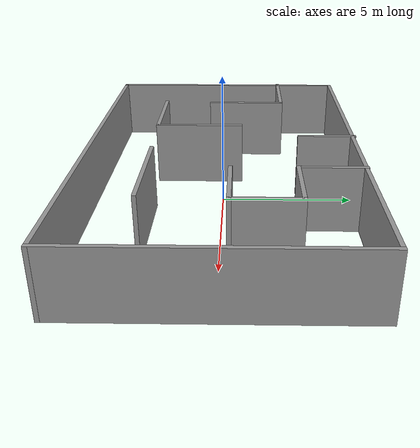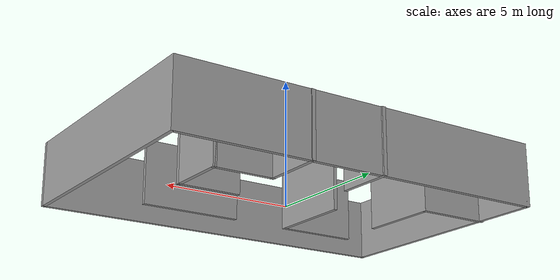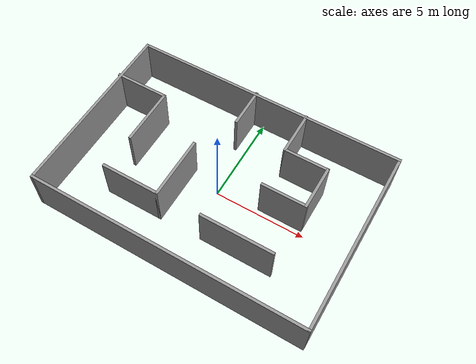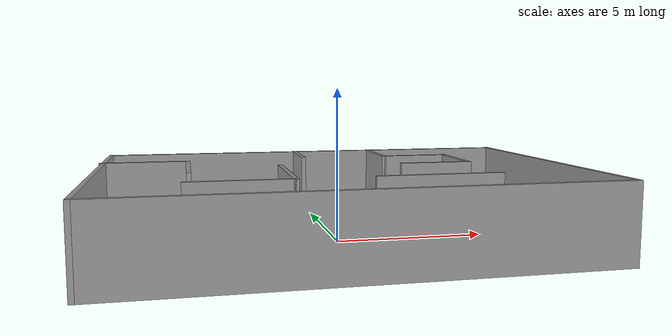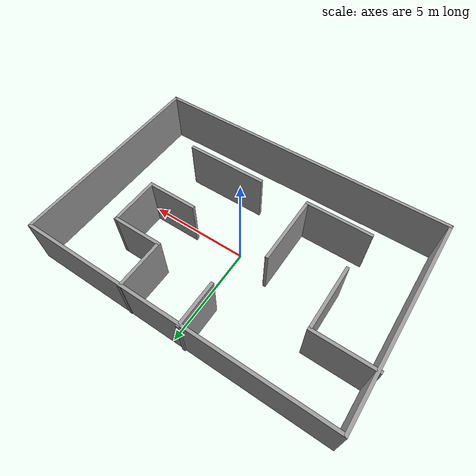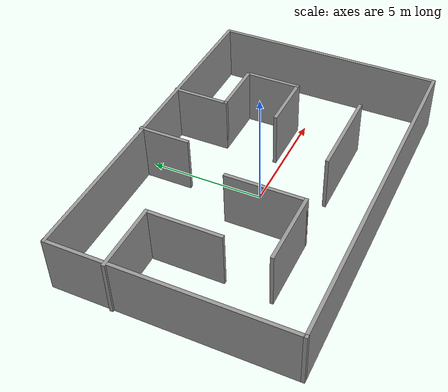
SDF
<?xml version='1.0'?>
<sdf version='1.7'>
  <model name='MAZE_ROOM'>
    <pose>-0.039211 0.030941 0 0 -0 0</pose>
    <link name='Wall_0'>
      <collision name='Wall_0_Collision'>
        <geometry>
          <box>
            <size>15.15 0.15 2.5</size>
          </box>
        </geometry>
        <pose>0 0 1.25 0 -0 0</pose>
      </collision>
      <visual name='Wall_0_Visual'>
        <pose>0 0 1.25 0 -0 0</pose>
        <geometry>
          <box>
            <size>15.15 0.15 2.5</size>
          </box>
        </geometry>
        <material>
          <script>
            <uri>file://media/materials/scripts/gazebo.material</uri>
            <name>Gazebo/Grey</name>
          </script>
          <ambient>1 1 1 1</ambient>
        </material>
        <meta>
          <layer>0</layer>
        </meta>
      </visual>
      <pose>0.039211 4.96906 0 0 -0 0</pose>
    </link>
    <link name='Wall_1'>
      <collision name='Wall_1_Collision'>
        <geometry>
          <box>
            <size>10.15 0.15 2.5</size>
          </box>
        </geometry>
        <pose>0 0 1.25 0 -0 0</pose>
      </collision>
      <visual name='Wall_1_Visual'>
        <pose>0 0 1.25 0 -0 0</pose>
        <geometry>
          <box>
            <size>10.15 0.15 2.5</size>
          </box>
        </geometry>
        <material>
          <script>
            <uri>file://media/materials/scripts/gazebo.material</uri>
            <name>Gazebo/Grey</name>
          </script>
          <ambient>1 1 1 1</ambient>
        </material>
        <meta>
          <layer>0</layer>
        </meta>
      </visual>
      <pose>7.53921 -0.030941 0 0 -0 -1.5708</pose>
    </link>
    <link name='Wall_12'>
      <collision name='Wall_12_Collision'>
        <geometry>
          <box>
            <size>4 0.15 2.5</size>
          </box>
        </geometry>
        <pose>0 0 1.25 0 -0 0</pose>
      </collision>
      <visual name='Wall_12_Visual'>
        <pose>0 0 1.25 0 -0 0</pose>
        <geometry>
          <box>
            <size>4 0.15 2.5</size>
          </box>
        </geometry>
        <material>
          <script>
            <uri>file://media/materials/scripts/gazebo.material</uri>
            <name>Gazebo/Grey</name>
          </script>
          <ambient>1 1 1 1</ambient>
        </material>
        <meta>
          <layer>0</layer>
        </meta>
      </visual>
      <pose>2.61903 -2.65342 0 0 -0 0</pose>
    </link>
    <link name='Wall_14'>
      <collision name='Wall_14_Collision'>
        <geometry>
          <box>
            <size>2.5 0.15 2.5</size>
          </box>
        </geometry>
        <pose>0 0 1.25 0 -0 0</pose>
      </collision>
      <visual name='Wall_14_Visual'>
        <pose>0 0 1.25 0 -0 0</pose>
        <geometry>
          <box>
            <size>2.5 0.15 2.5</size>
          </box>
        </geometry>
        <material>
          <script>
            <uri>file://media/materials/scripts/gazebo.material</uri>
            <name>Gazebo/Grey</name>
          </script>
          <ambient>1 1 1 1</ambient>
        </material>
        <meta>
          <layer>0</layer>
        </meta>
      </visual>
      <pose>2.37499 3.82164 0 0 -0 -1.5708</pose>
    </link>
    <link name='Wall_15'>
      <collision name='Wall_15_Collision'>
        <geometry>
          <box>
            <size>2.5 0.15 2.5</size>
          </box>
        </geometry>
        <pose>0 0 1.25 0 -0 0</pose>
      </collision>
      <visual name='Wall_15_Visual'>
        <pose>0 0 1.25 0 -0 0</pose>
        <geometry>
          <box>
            <size>2.5 0.15 2.5</size>
          </box>
        </geometry>
        <material>
          <script>
            <uri>file://media/materials/scripts/gazebo.material</uri>
            <name>Gazebo/Grey</name>
          </script>
          <ambient>1 1 1 1</ambient>
        </material>
        <meta>
          <layer>0</layer>
        </meta>
      </visual>
      <pose>3.54999 2.64664 0 0 -0 0</pose>
    </link>
    <link name='Wall_16'>
      <collision name='Wall_16_Collision'>
        <geometry>
          <box>
            <size>2.5 0.15 2.5</size>
          </box>
        </geometry>
        <pose>0 0 1.25 0 -0 0</pose>
      </collision>
      <visual name='Wall_16_Visual'>
        <pose>0 0 1.25 0 -0 0</pose>
        <geometry>
          <box>
            <size>2.5 0.15 2.5</size>
          </box>
        </geometry>
        <material>
          <script>
            <uri>file://media/materials/scripts/gazebo.material</uri>
            <name>Gazebo/Grey</name>
          </script>
          <ambient>1 1 1 1</ambient>
        </material>
        <meta>
          <layer>0</layer>
        </meta>
      </visual>
      <pose>4.72499 1.47164 0 0 -0 -1.5708</pose>
    </link>
    <link name='Wall_17'>
      <collision name='Wall_17_Collision'>
        <geometry>
          <box>
            <size>2.5 0.15 2.5</size>
          </box>
        </geometry>
        <pose>0 0 1.25 0 -0 0</pose>
      </collision>
      <visual name='Wall_17_Visual'>
        <pose>0 0 1.25 0 -0 0</pose>
        <geometry>
          <box>
            <size>2.5 0.15 2.5</size>
          </box>
        </geometry>
        <material>
          <script>
            <uri>file://media/materials/scripts/gazebo.material</uri>
            <name>Gazebo/Grey</name>
          </script>
          <ambient>1 1 1 1</ambient>
        </material>
        <meta>
          <layer>0</layer>
        </meta>
      </visual>
      <pose>3.54999 0.296636 0 0 -0 3.14159</pose>
    </link>
    <link name='Wall_19'>
      <collision name='Wall_19_Collision'>
        <geometry>
          <box>
            <size>2.25 0.15 2.5</size>
          </box>
        </geometry>
        <pose>0 0 1.25 0 -0 0</pose>
      </collision>
      <visual name='Wall_19_Visual'>
        <pose>0 0 1.25 0 -0 0</pose>
        <geometry>
          <box>
            <size>2.25 0.15 2.5</size>
          </box>
        </geometry>
        <material>
          <script>
            <uri>file://media/materials/scripts/gazebo.material</uri>
            <name>Gazebo/Grey</name>
          </script>
          <ambient>1 1 1 1</ambient>
        </material>
        <meta>
          <layer>0</layer>
        </meta>
      </visual>
      <pose>-0.575258 3.98094 0 0 -0 -1.5708</pose>
    </link>
    <link name='Wall_2'>
      <collision name='Wall_2_Collision'>
        <geometry>
          <box>
            <size>15.15 0.15 2.5</size>
          </box>
        </geometry>
        <pose>0 0 1.25 0 -0 0</pose>
      </collision>
      <visual name='Wall_2_Visual'>
        <pose>0 0 1.25 0 -0 0</pose>
        <geometry>
          <box>
            <size>15.15 0.15 2.5</size>
          </box>
        </geometry>
        <material>
          <script>
            <uri>file://media/materials/scripts/gazebo.material</uri>
            <name>Gazebo/Grey</name>
          </script>
          <ambient>1 1 1 1</ambient>
        </material>
        <meta>
          <layer>0</layer>
        </meta>
      </visual>
      <pose>0.039211 -5.03094 0 0 -0 3.14159</pose>
    </link>
    <link name='Wall_3'>
      <collision name='Wall_3_Collision'>
        <geometry>
          <box>
            <size>10.15 0.15 2.5</size>
          </box>
        </geometry>
        <pose>0 0 1.25 0 -0 0</pose>
      </collision>
      <visual name='Wall_3_Visual'>
        <pose>0 0 1.25 0 -0 0</pose>
        <geometry>
          <box>
            <size>10.15 0.15 2.5</size>
          </box>
        </geometry>
        <material>
          <script>
            <uri>file://media/materials/scripts/gazebo.material</uri>
            <name>Gazebo/Grey</name>
          </script>
          <ambient>1 1 1 1</ambient>
        </material>
        <meta>
          <layer>0</layer>
        </meta>
      </visual>
      <pose>-7.46079 -0.030941 0 0 -0 1.5708</pose>
    </link>
    <link name='Wall_5'>
      <collision name='Wall_5_Collision'>
        <geometry>
          <box>
            <size>3 0.15 2.5</size>
          </box>
        </geometry>
        <pose>0 0 1.25 0 -0 0</pose>
      </collision>
      <visual name='Wall_5_Visual'>
        <pose>0 0 1.25 0 -0 0</pose>
        <geometry>
          <box>
            <size>3 0.15 2.5</size>
          </box>
        </geometry>
        <material>
          <script>
            <uri>file://media/materials/scripts/gazebo.material</uri>
            <name>Gazebo/Grey</name>
          </script>
          <ambient>1 1 1 1</ambient>
        </material>
        <meta>
          <layer>0</layer>
        </meta>
      </visual>
      <pose>-6.11421 2.42375 0 0 -0 0</pose>
    </link>
    <link name='Wall_6'>
      <collision name='Wall_6_Collision'>
        <geometry>
          <box>
            <size>3.25 0.15 2.5</size>
          </box>
        </geometry>
        <pose>0 0 1.25 0 -0 0</pose>
      </collision>
      <visual name='Wall_6_Visual'>
        <pose>0 0 1.25 0 -0 0</pose>
        <geometry>
          <box>
            <size>3.25 0.15 2.5</size>
          </box>
        </geometry>
        <material>
          <script>
            <uri>file://media/materials/scripts/gazebo.material</uri>
            <name>Gazebo/Grey</name>
          </script>
          <ambient>1 1 1 1</ambient>
        </material>
        <meta>
          <layer>0</layer>
        </meta>
      </visual>
      <pose>-4.68921 0.873746 0 0 -0 -1.5708</pose>
    </link>
    <link name='Wall_8'>
      <collision name='Wall_8_Collision'>
        <geometry>
          <box>
            <size>3.25 0.15 2.5</size>
          </box>
        </geometry>
        <pose>0 0 1.25 0 -0 0</pose>
      </collision>
      <visual name='Wall_8_Visual'>
        <pose>0 0 1.25 0 -0 0</pose>
        <geometry>
          <box>
            <size>3.25 0.15 2.5</size>
          </box>
        </geometry>
        <material>
          <script>
            <uri>file://media/materials/scripts/gazebo.material</uri>
            <name>Gazebo/Grey</name>
          </script>
          <ambient>1 1 1 1</ambient>
        </material>
        <meta>
          <layer>0</layer>
        </meta>
      </visual>
      <pose>-3.2791 -2.72203 0 0 -0 0</pose>
    </link>
    <link name='Wall_9'>
      <collision name='Wall_9_Collision'>
        <geometry>
          <box>
            <size>3.5 0.15 2.5</size>
          </box>
        </geometry>
        <pose>0 0 1.25 0 -0 0</pose>
      </collision>
      <visual name='Wall_9_Visual'>
        <pose>0 0 1.25 0 -0 0</pose>
        <geometry>
          <box>
            <size>3.5 0.15 2.5</size>
          </box>
        </geometry>
        <material>
          <script>
            <uri>file://media/materials/scripts/gazebo.material</uri>
            <name>Gazebo/Grey</name>
          </script>
          <ambient>1 1 1 1</ambient>
        </material>
        <meta>
          <layer>0</layer>
        </meta>
      </visual>
      <pose>-1.7291 -1.04703 0 0 -0 1.5708</pose>
    </link>
    <static>1</static>
  </model>
</sdf>
